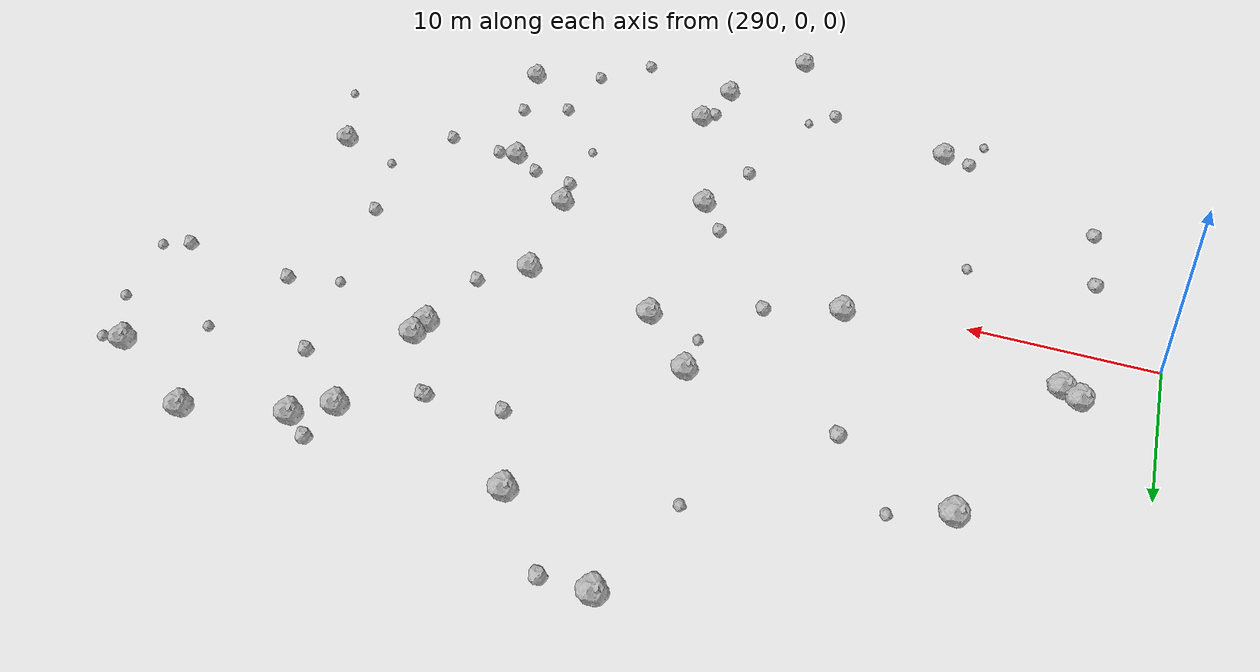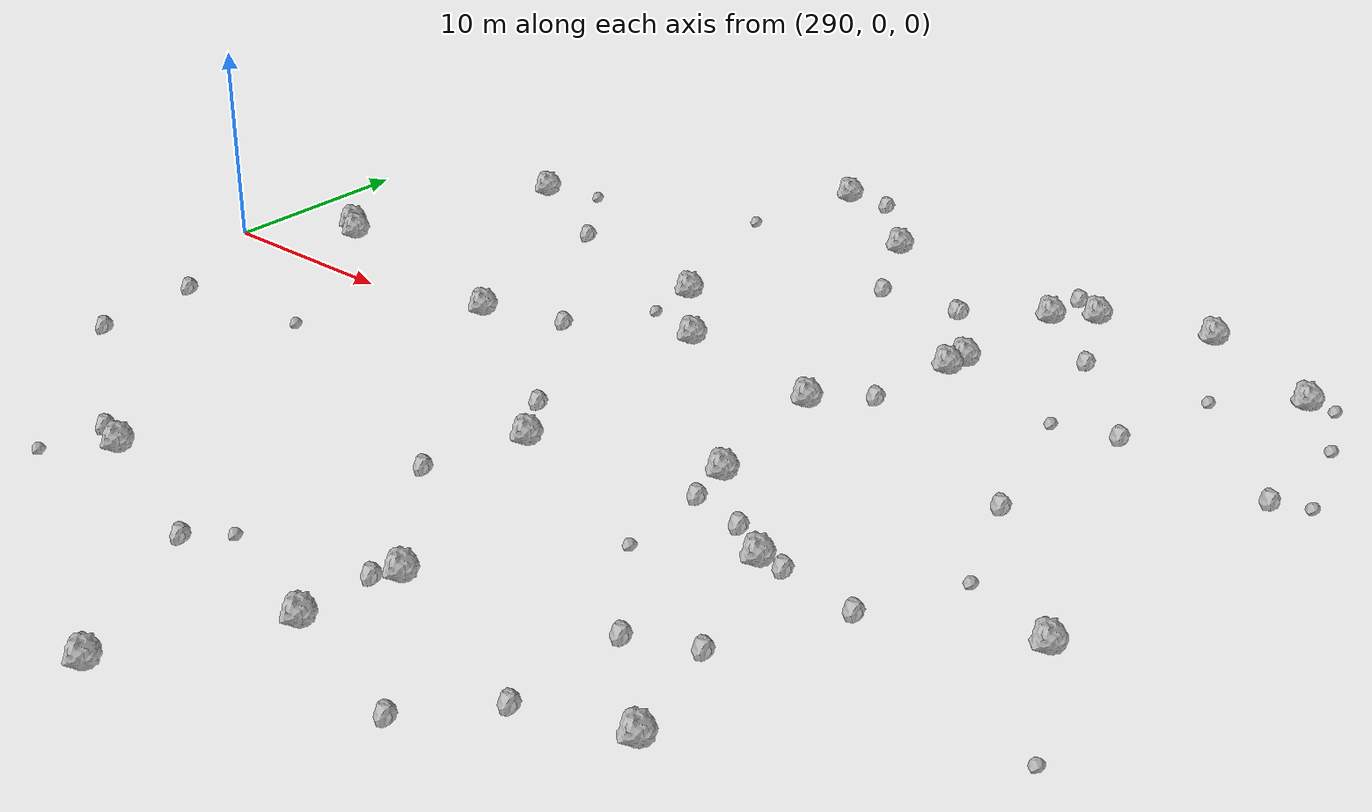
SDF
<sdf version="1.6">
 <world name="default">
  <include><uri>model://sun</uri></include>
  <model name="rock1_8_3">
   <include><uri>model://rock1</uri><pose>335.5219789603512 21.875417552802006 0.5 0 0 0</pose></include>
  </model>
  <model name="rock1_8_4">
   <include><uri>model://rock1</uri><pose>317.7901848846939 20.885135074775903 0.5 0 0 0</pose></include>
  </model>
  <model name="rock1_8_5">
   <include><uri>model://rock1</uri><pose>324.71999284187115 4.159800485422494 0.5 0 0 0</pose></include>
  </model>
  <model name="rock1_8_6">
   <include><uri>model://rock1</uri><pose>331.5761375498035 -7.702595367349765 0.5 0 0 0</pose></include>
  </model>
  <model name="rock1_8_7">
   <include><uri>model://rock1</uri><pose>311.5417624804132 24.839158112462627 0.5 0 0 0</pose></include>
  </model>
  <model name="rock1_8_8">
   <include><uri>model://rock1</uri><pose>294.7588651458437 3.6125528652668493 0.5 0 0 0</pose></include>
  </model>
  <model name="rock1_8_9">
   <include><uri>model://rock1</uri><pose>326.082219081513 -3.356277861973041 0.5 0 0 0</pose></include>
  </model>
  <model name="rock1_8_10">
   <include><uri>model://rock1</uri><pose>317.6512568817328 -6.612381946223746 0.5 0 0 0</pose></include>
  </model>
  <model name="rock1_8_11">
   <include><uri>model://rock1</uri><pose>330.06606990175254 20.279952171624416 0.5 0 0 0</pose></include>
  </model>
  <model name="rock1_8_12">
   <include><uri>model://rock1</uri><pose>304.67724309304293 -18.67166771893263 0.5 0 0 0</pose></include>
  </model>
  <model name="rock1_8_13">
   <include><uri>model://rock1</uri><pose>328.333179638707 18.81082957352516 0.5 0 0 0</pose></include>
  </model>
  <model name="rock1_8_14">
   <include><uri>model://rock1</uri><pose>335.8236766970607 -19.49722079087607 0.5 0 0 0</pose></include>
  </model>
  <model name="rock1_8_15">
   <include><uri>model://rock1</uri><pose>293.8049048707018 4.2337931949605405 0.5 0 0 0</pose></include>
  </model>
  <model name="rock1_8_16">
   <include><uri>model://rock1</uri><pose>306.7081447747441 1.3630852874630897 0.5 0 0 0</pose></include>
  </model>
  <model name="rock1_8_17">
   <include><uri>model://rock1</uri><pose>321.175654372062 -22.33872896874375 0.5 0 0 0</pose></include>
  </model>
  <model name="rock1_8_18">
   <include><uri>model://rock1</uri><pose>327.6332275305724 11.043488044579789 0.5 0 0 0</pose></include>
  </model>
  <model name="rock1_8_19">
   <include><uri>model://rock1</uri><pose>316.56470553955404 5.679106874700253 0.5 0 0 0</pose></include>
  </model>
  <model name="rock1_8_20">
   <include><uri>model://rock1</uri><pose>321.74685011533666 -17.67744801997759 0.5 0 0 0</pose></include>
  </model>
  <model name="rock1_8_21">
   <include><uri>model://rock1</uri><pose>313.07220207244376 9.507598577935283 0.5 0 0 0</pose></include>
  </model>
  <model name="rock1_8_22">
   <include><uri>model://rock1</uri><pose>298.2848220423343 14.574208972110284 0.5 0 0 0</pose></include>
  </model>
  <model name="rock1_8_23">
   <include><uri>model://rock1</uri><pose>327.78870481880915 12.242637448498435 0.5 0 0 0</pose></include>
  </model>
  <model name="rock1_8_24">
   <include><uri>model://rock1</uri><pose>317.3485970288475 -29.31283094236583 0.5 0 0 0</pose></include>
  </model>
  <model name="rock1_8_25">
   <include><uri>model://rock1</uri><pose>341.9884281264543 18.626672860950094 0.5 0 0 0</pose></include>
  </model>
  <model name="rock1_8_26">
   <include><uri>model://rock1</uri><pose>343.5595710522581 -5.349835008852931 0.5 0 0 0</pose></include>
  </model>
  <model name="rock2_8_0">
   <include><uri>model://rock2</uri><pose>332.84299228752803 -7.684214168804683 0.3 0 0 0</pose></include>
  </model>
  <model name="rock2_8_1">
   <include><uri>model://rock2</uri><pose>310.84165933059404 2.7937433422044933 0.3 0 0 0</pose></include>
  </model>
  <model name="rock2_8_2">
   <include><uri>model://rock2</uri><pose>326.61270515975417 -5.619916125524817 0.3 0 0 0</pose></include>
  </model>
  <model name="rock2_8_3">
   <include><uri>model://rock2</uri><pose>329.434792840159 -6.301331441695147 0.3 0 0 0</pose></include>
  </model>
  <model name="rock2_8_4">
   <include><uri>model://rock2</uri><pose>331.18143646559247 -15.263779074284322 0.3 0 0 0</pose></include>
  </model>
  <model name="rock2_8_5">
   <include><uri>model://rock2</uri><pose>293.8493672075797 -6.608876174194549 0.3 0 0 0</pose></include>
  </model>
  <model name="rock2_8_6">
   <include><uri>model://rock2</uri><pose>320.3188694553427 15.974186088776229 0.3 0 0 0</pose></include>
  </model>
  <model name="rock2_8_7">
   <include><uri>model://rock2</uri><pose>324.52028680331864 16.352776111000907 0.3 0 0 0</pose></include>
  </model>
  <model name="rock2_8_8">
   <include><uri>model://rock2</uri><pose>337.2785137354622 10.293433757604795 0.3 0 0 0</pose></include>
  </model>
  <model name="rock2_8_9">
   <include><uri>model://rock2</uri><pose>332.34014655502045 15.570501230741073 0.3 0 0 0</pose></include>
  </model>
  <model name="rock2_8_10">
   <include><uri>model://rock2</uri><pose>294.36908962664324 -12.068315622848239 0.3 0 0 0</pose></include>
  </model>
  <model name="rock2_8_11">
   <include><uri>model://rock2</uri><pose>321.02346167607385 -18.599501846274727 0.3 0 0 0</pose></include>
  </model>
  <model name="rock2_8_12">
   <include><uri>model://rock2</uri><pose>312.9159872778336 -21.60230073182614 0.3 0 0 0</pose></include>
  </model>
  <model name="rock2_8_13">
   <include><uri>model://rock2</uri><pose>304.40625791363095 11.343293196118424 0.3 0 0 0</pose></include>
  </model>
  <model name="rock2_8_14">
   <include><uri>model://rock2</uri><pose>328.4277354524318 21.332004322052278 0.3 0 0 0</pose></include>
  </model>
  <model name="rock2_8_15">
   <include><uri>model://rock2</uri><pose>334.1193889630957 -13.976649253009462 0.3 0 0 0</pose></include>
  </model>
  <model name="rock2_8_16">
   <include><uri>model://rock2</uri><pose>324.7216726316168 16.34786988767386 0.3 0 0 0</pose></include>
  </model>
  <model name="rock2_8_17">
   <include><uri>model://rock2</uri><pose>314.0530263862504 24.859219443193716 0.3 0 0 0</pose></include>
  </model>
  <model name="rock2_8_18">
   <include><uri>model://rock2</uri><pose>344.8449198789708 9.544871208206388 0.3 0 0 0</pose></include>
  </model>
  <model name="rock2_8_19">
   <include><uri>model://rock2</uri><pose>326.97320843410523 6.365103450159118 0.3 0 0 0</pose></include>
  </model>
  <model name="rock2_8_20">
   <include><uri>model://rock2</uri><pose>316.17780041178736 -11.38868154523265 0.3 0 0 0</pose></include>
  </model>
  <model name="rock2_8_21">
   <include><uri>model://rock2</uri><pose>328.2836935402453 -24.377164364886408 0.3 0 0 0</pose></include>
  </model>
  <model name="rock2_8_22">
   <include><uri>model://rock2</uri><pose>331.106195770891 -21.04485340607062 0.3 0 0 0</pose></include>
  </model>
  <model name="rock2_8_23">
   <include><uri>model://rock2</uri><pose>315.7301392365379 -3.9455888329546625 0.3 0 0 0</pose></include>
  </model>
  <model name="rock2_8_24">
   <include><uri>model://rock2</uri><pose>336.7946881245744 -8.323748866788637 0.3 0 0 0</pose></include>
  </model>
  <model name="rock2_8_25">
   <include><uri>model://rock2</uri><pose>336.6362374902186 1.9431814554433515 0.3 0 0 0</pose></include>
  </model>
  <model name="rock2_8_26">
   <include><uri>model://rock2</uri><pose>302.8615246898022 -18.058153085076437 0.3 0 0 0</pose></include>
  </model>
  <model name="rock3_8_0">
   <include><uri>model://rock3</uri><pose>313.2652133923546 6.715787867971322 0.2 0 0 0</pose></include>
  </model>
  <model name="rock3_8_1">
   <include><uri>model://rock3</uri><pose>347.12225571418753 -11.78443611577513 0.2 0 0 0</pose></include>
  </model>
  <model name="rock3_8_2">
   <include><uri>model://rock3</uri><pose>301.0968918813497 15.554965671485014 0.2 0 0 0</pose></include>
  </model>
  <model name="rock3_8_3">
   <include><uri>model://rock3</uri><pose>344.774387959219 15.19806382121805 0.2 0 0 0</pose></include>
  </model>
  <model name="rock3_8_4">
   <include><uri>model://rock3</uri><pose>338.5292861134176 15.785605159926973 0.2 0 0 0</pose></include>
  </model>
  <model name="rock3_8_5">
   <include><uri>model://rock3</uri><pose>334.22376759950663 9.44340228159777 0.2 0 0 0</pose></include>
  </model>
  <model name="rock3_8_6">
   <include><uri>model://rock3</uri><pose>314.40941208677697 -20.05939428771029 0.2 0 0 0</pose></include>
  </model>
  <model name="rock3_8_7">
   <include><uri>model://rock3</uri><pose>300.9378673616077 -5.706803118807983 0.2 0 0 0</pose></include>
  </model>
  <model name="rock3_8_8">
   <include><uri>model://rock3</uri><pose>302.2732373360777 -21.11926362651094 0.2 0 0 0</pose></include>
  </model>
  <model name="rock3_8_9">
   <include><uri>model://rock3</uri><pose>309.9081894004464 18.571887226118953 0.2 0 0 0</pose></include>
  </model>
  <model name="rock3_8_10">
   <include><uri>model://rock3</uri><pose>338.922243007424 -3.7004426831785935 0.2 0 0 0</pose></include>
  </model>
  <model name="rock3_8_11">
   <include><uri>model://rock3</uri><pose>343.26650077863076 18.672268680683707 0.2 0 0 0</pose></include>
  </model>
  <model name="rock3_8_12">
   <include><uri>model://rock3</uri><pose>346.40110415445093 10.170971320788581 0.2 0 0 0</pose></include>
  </model>
  <model name="rock3_8_13">
   <include><uri>model://rock3</uri><pose>326.9893996069349 -10.267584907883137 0.2 0 0 0</pose></include>
  </model>
 </world>
</sdf>
